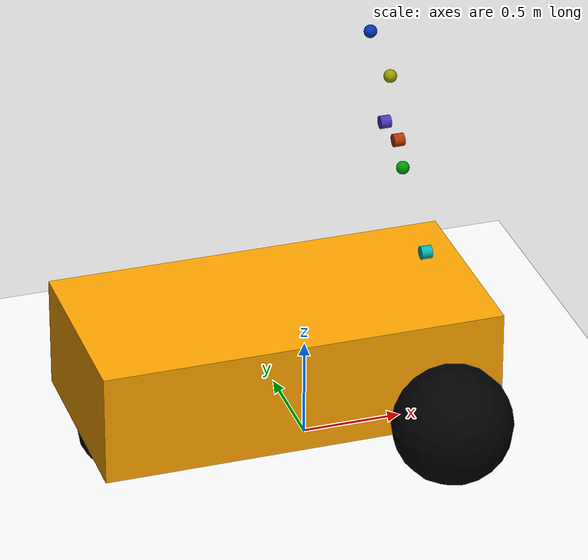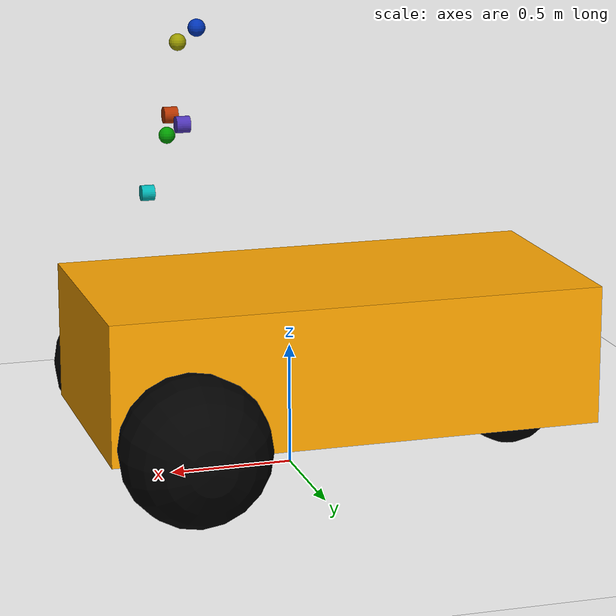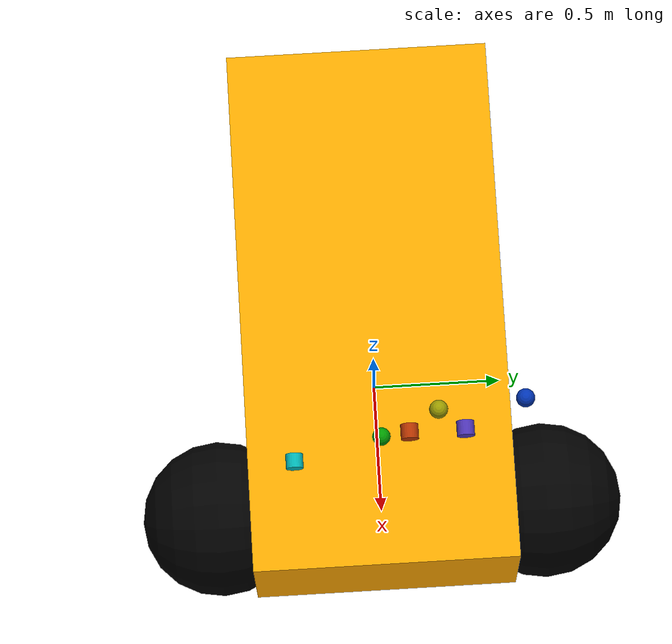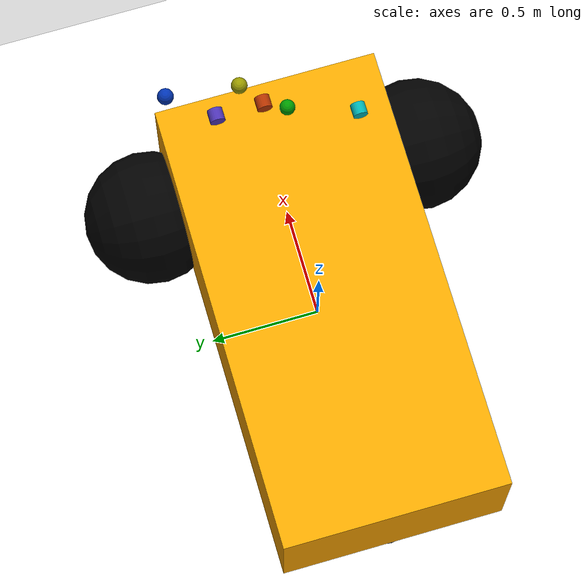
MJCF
<mujoco>
    <compiler angle="radian" />
	<option gravity="0 0 -9.81" timestep="0.002">
		<flag contact="enable" />
	</option>
	<worldbody>
        <light diffuse=".5 .5 .5" pos="0 0 5" dir="0 0 -1" />
		<geom type="plane" size="20 20 0.1" rgba="1 1 1 1" />

        <body name="chassis" pos="-0.151427 0 0.5" euler="0 0 0">
            <joint type="free" />
            <geom type="box" size="1.00571 0.5 0.284363" rgba="1 0.65 0 1" />
            <inertial pos="0 0 0" mass="1.14395" diaginertia="0.126164 0.416519 0.481014" />
            <body name="left_wheel" pos="0.70571 0.625029 -0.2" euler="-1.5707 0 0">
                <joint name="left_wheel_joint" type="hinge" axis="0 0 1" pos="0 0 0" damping="0.2" />
                <geom type="sphere" size="0.3" rgba="0 0 0 1" />
                <inertial pos="0 0 0" mass="2" diaginertia="0.145833 0.145833 0.125" />
            </body>
            <body name="right_wheel" pos="0.70571 -0.625029 -0.2" euler="-1.5707 0 0">
                <joint name="right_wheel_joint" type="hinge" axis="0 0 1" pos="0 0 0" damping="0.2" />
                <geom type="sphere" size="0.3" rgba="0 0 0 1" />
                <inertial pos="0 0 0" mass="2" diaginertia="0.145833 0.145833 0.125" />
            </body>
            <body name="caster" pos="-0.805711 0 -0.3" euler="0 0 0">
                <geom type="sphere" size="0.2" rgba="0 0 0 1" />
                <inertial pos="0 0 0" mass="0.005" diaginertia="0.1 0.1 0.1" />
            </body>
        </body>

    <body name="ball1" pos="0.5 0.0 1.4">
      <freejoint/>
      <geom type="sphere" name="ball1" size="0.033" condim="3"
       friction="1 .03 .003" rgba="0 0.6 0 1" contype="1" conaffinity="1" solref="0.01 1" density="600"/>
    </body>
    <body name="ball2" pos="0.5 0.2 1.8">
      <freejoint/>
      <geom type="sphere" name="ball2" size="0.033" condim="3"
       friction="1 .03 .003" rgba="0.6 0.6 0 1" contype="1" conaffinity="1" solref="0.01 1" density="600"/>
    </body>
    <body name="ball3" pos="0.5 0.5 1.9">
      <freejoint/>
      <geom type="sphere" name="ball3" size="0.033" condim="3"
       friction="1 .03 .003" rgba="0.0 0.2 0.7 1" contype="1" conaffinity="1" solref="0.01 1" density="600"/>
    </body>
    <body name="cylinder1" pos="0.51 -0.32 1.1" euler="0 1.5708 0">
      <freejoint/>
      <geom type="cylinder" name="cylinder1" size="0.032 0.027 0.01" condim="3"
        rgba="0 0.7 0.7 1" contype="1" conaffinity="1" solref="0.01 1" density="500" friction="0.01 0.003 .0003"/>
    </body>
    <body name="cylinder2" pos="0.51 0.1 1.5" euler="0 1.5708 0">
      <freejoint/>
      <geom type="cylinder" name="cylinder2" size="0.032 0.027 0.01" condim="3"
        rgba="0.7 0.2 0 1" contype="1" conaffinity="1" solref="0.01 1" density="500" friction="0.01 0.003 .0003"/>
    </body>
    <body name="cylinder3" pos="0.51 0.3 1.5" euler="0 1.5708 0">
      <freejoint/>
      <geom type="cylinder" name="cylinder3" size="0.032 0.027 0.01" condim="3"
        rgba="0.3 0.2 0.7 1" contype="1" conaffinity="1" solref="0.01 1" density="500" friction="0.01 0.003 .0003"/>
    </body>

	</worldbody>
    <contact>
        <exclude body1="chassis" body2="left_wheel" />
        <exclude body1="chassis" body2="right_wheel" />
    </contact>
</mujoco>
